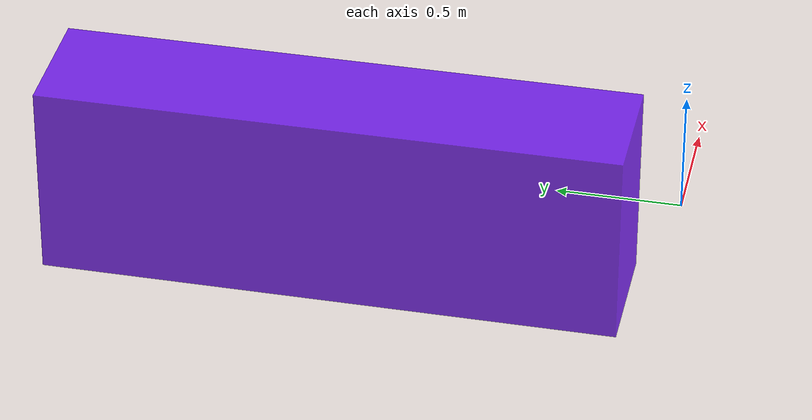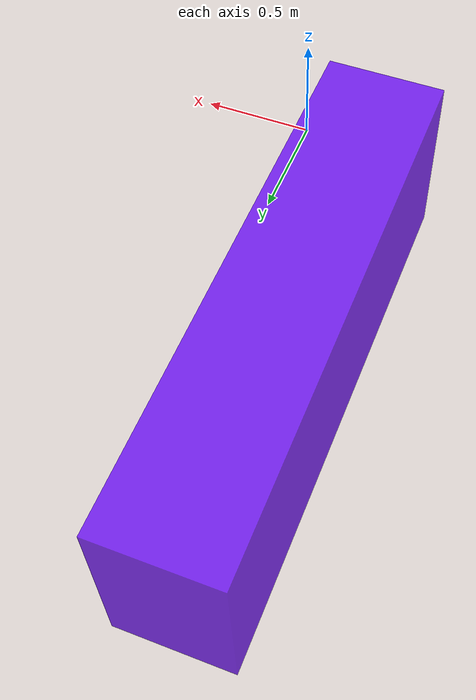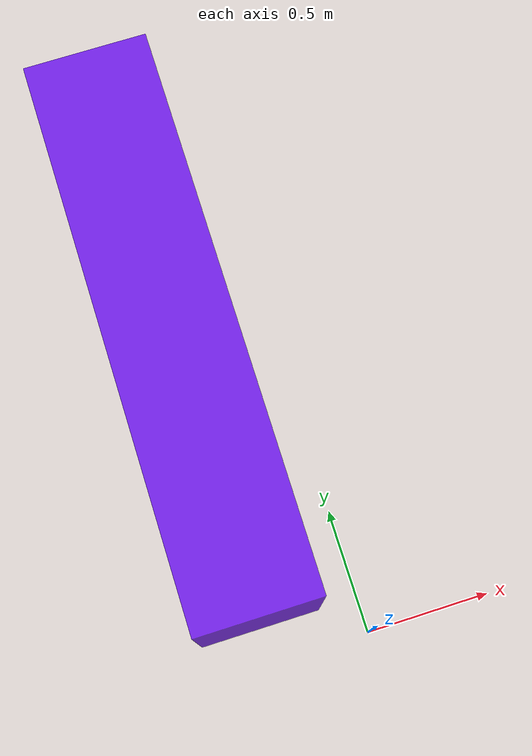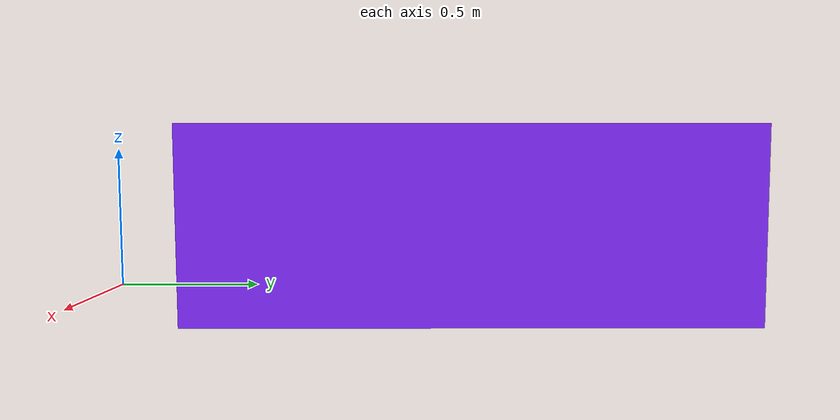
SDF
<sdf version="1.6">
    <model name="conveyor_belt">
        <static>true</static>
        <link name="conveyor_link">
            <visual name="conveyor_visual">
                <geometry>
                    <box>
                        <size>0.5 2.3 0.8</size>
                    </box>
                </geometry>
                <material>
                    <ambient>0.7 0 1 0.8</ambient>
                    <diffuse>0.4 0 1 0.8</diffuse>
                </material>
            </visual>
            <collision name="conveyor_collision">
                <geometry>
                    <box>
                        <size>0.5 2.3 0.8</size>
                    </box>
                </geometry>
            </collision>
            <inertial>
                <mass>10</mass>
                <inertia>
                    <ixx>1</ixx>
                    <iyy>1</iyy>
                    <izz>1</izz>
                    <ixy>0</ixy>
                    <ixz>0</ixz>
                    <iyz>0</iyz>
                </inertia>
            </inertial>
        </link>
        <pose>-0.4 1.3 0.2 0 0 0</pose>
    </model>
</sdf>
